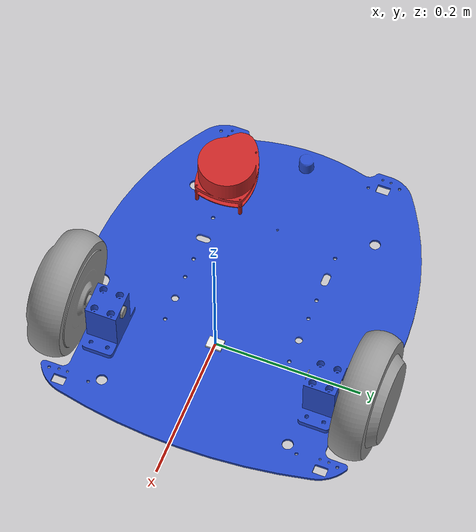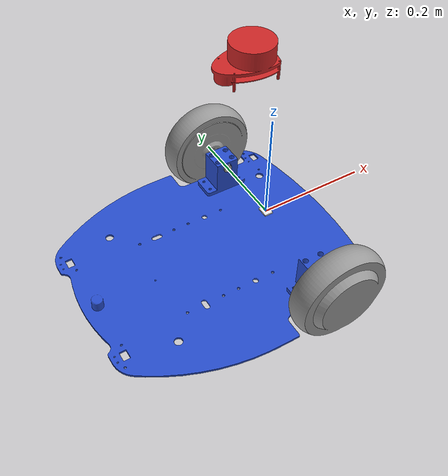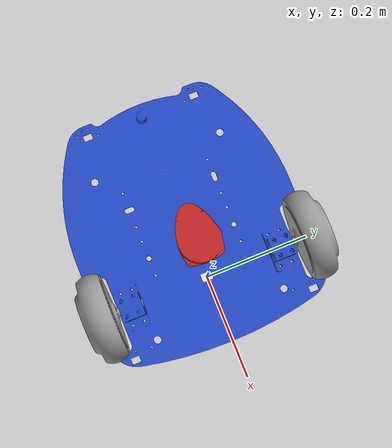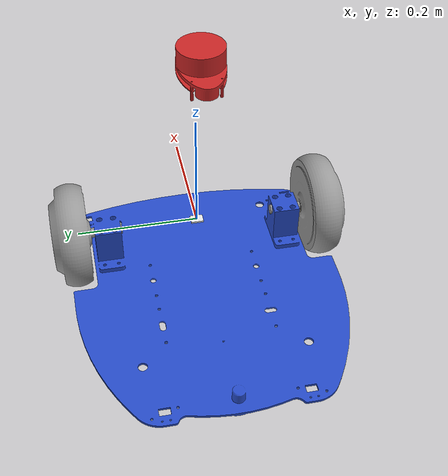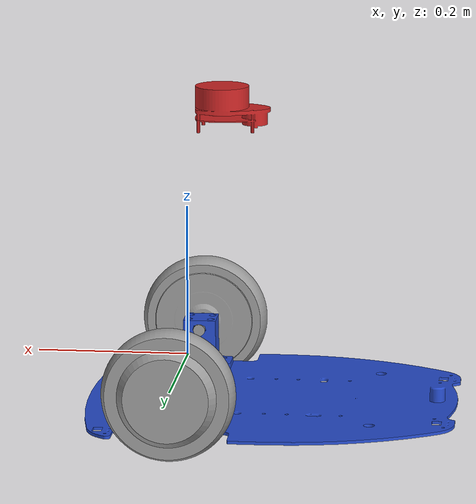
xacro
<?xml version="1.0"?>
<robot xmlns:xacro="http://www.ros.org/wiki/xacro" name="andbot1dot2">
	<xacro:property name="robotname" value="andbot1dot2"/>
	<!-- Import all Gazebo-customization elements, including Gazebo colors-->
        <xacro:include filename="$(find andbot1dot2)/modeldescription/urdf/andbot1dot2.gazebo" />
        <!-- Import Rviz colors -->
        <xacro:include filename="$(find andbot1dot2)/modeldescription/urdf/andbot1dot2material4rviz.xacro"/>
        <xacro:include filename="$(find andbot1dot2)/modeldescription/urdf/sensors/rplidar_laser.urdf.xacro" />
        <xacro:include filename="$(find andbot1dot2)/modeldescription/urdf/sensors/mpu6050_imu.urdf.xacro" />
		<link name="${robotname}_base">
                <collision>
                        <geometry>
                                <mesh filename="package://andbot1dot2/modeldescription/mesh/andbot1dot2_baseplate.STL"></mesh></geometry></collision>
                <visual>
                        <geometry>
                                <mesh filename="package://andbot1dot2/modeldescription/mesh/andbot1dot2_baseplate.STL"/>
                        </geometry>
                        <material name="blue"></material>
                        <origin rpy="0 0 0" xyz="0 0 0"/>
                </visual>
                <inertial>
                        <mass value="5.702"/>
                        <inertia ixx="0.1866" ixy="0.0" ixz="0.0038" iyy="0.1322" iyz="0.0" izz="0.2826"/>
                </inertial>
        </link>
		<link name="${robotname}_leftwheel">
                <collision>
                        <geometry>
                                <mesh filename="package://andbot1dot2/modeldescription/mesh/andbot1dot2_leftwheel.STL"></mesh></geometry></collision>
                <visual>
                        <geometry>
                                <mesh filename="package://andbot1dot2/modeldescription/mesh/andbot1dot2_leftwheel.STL"/>
                        </geometry>
                        <material name="grey">
                        </material>
                </visual>
                <inertial>
                        <mass value="1.158"/><!-- Is this actually right? -->
                        <inertia ixx="0.0532" ixy="0.0" ixz="0.0" iyy="0.0038" iyz="0.0" izz="0.0532"/>
                </inertial>
        </link>
		<link name="${robotname}_rightwheel">
                <collision>
                        <geometry>
                                <mesh filename="package://andbot1dot2/modeldescription/mesh/andbot1dot2_rightwheel.STL"></mesh></geometry></collision>
                <visual>
                        <geometry>
                                <mesh filename="package://andbot1dot2/modeldescription/mesh/andbot1dot2_rightwheel.STL"/>
                        </geometry>
                        <material name="grey">
                        </material>
                </visual>
                <inertial>
                        <mass value="1.158"/>
                        <inertia ixx="0.0532" ixy="0.0" ixz="0.0" iyy="0.0038" iyz="0.0" izz="0.0532"/>
                </inertial>
        </link>
        <joint name="base2leftwheel" type="continuous">
                <parent link="${robotname}_base"/>
                <child link="${robotname}_leftwheel"/>
                <origin xyz="0 0.20684 0"/>
                <axis xyz="0 -1 0"/>
        </joint>
        <joint name="base2rightwheel" type="continuous">
                <parent link="${robotname}_base"/>
                <child link="${robotname}_rightwheel"/>
                <origin xyz="0 -0.20684 0"/>
                <axis xyz="0 1 0"/>
        </joint>
    <xacro:rplidar_laser name="${robotname}" parent="${robotname}_base" ros_topic="scan" update_rate="40" min_angle="-1.3962634" max_angle="1.3962634" >
    </xacro:rplidar_laser>
    <xacro:mpu6050_imu name="${robotname}" parent="${robotname}_base">
    </xacro:mpu6050_imu>
</robot>

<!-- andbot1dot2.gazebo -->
<robot xmlns:xacro="http://www.ros.org/wiki/xacro">
	<xacro:property name="robotname" value="andbot1dot2"/>
	<!-- ros_control plugin -->
	<gazebo>
	  <plugin name="gazebo_ros_control" filename="libgazebo_ros_control.so">
	    <robotNamespace>/andbot1dot2</robotNamespace>
	    <robotSimType>gazebo_ros_control/DefaultRobotHWSim</robotSimType>
	  </plugin>
	  <plugin name="differential_drive_controller" filename="libgazebo_ros_diff_drive.so">
	  	<publishWheelTF>false</publishWheelTF>
	  	<robotNamespace>/</robotNamespace>
	  	<publishTf>1</publishTf>
	  	<publishWheelJointState>false</publishWheelJointState>
	  	<alwaysOn>true</alwaysOn>
	  	<updateRate>100.0</updateRate>
	  	<leftJoint>shaft2leftwheel</leftJoint>
	  	<rightJoint>shaft2rightwheel</rightJoint>
	  	<wheelSeparation>0.247</wheelSeparation>
	  	<wheelDiameter>0.075</wheelDiameter>
	  	<broadcastTF>1</broadcastTF>
	  	<wheelTorque>30</wheelTorque>
	  	<wheelAcceleration>1.8</wheelAcceleration>
	  	<commandTopic>andbot1dot2/cmd_vel</commandTopic>
	  	<odometryTopic>odom</odometryTopic>
    	<odometryFrame>odom</odometryFrame>
    	<robotBaseFrame>${robotname}_base</robotBaseFrame></plugin>
	</gazebo>

	<!--baselink-->
	<gazebo reference="${robotname}_base">
		<material>Gazebo/Blue</material></gazebo>
	<gazebo reference="${robotname}_shaft"><material>Gazebo/White</material></gazebo>
	<gazebo reference="${robotname}_leftwheel"><material>Gazebo/Grey</material></gazebo>
	<gazebo reference="${robotname}_rightwheel"><material>Gazebo/Grey</material></gazebo>
	<gazebo reference="${robotname}_rplidar"><material>Gazebo/Red</material>
		<sensor type="ray" name="rplidar">
			<pose>0 0 0 0 0 0</pose>
			<visualize>false</visualize>
			<update_rate>40</update_rate>
			<ray>
				<scan>
					<horizontal>
						<samples>180</samples>
						<resolution>1</resolution>
						<min_angle>-1.570796</min_angle>
						<max_angle>1.570796</max_angle></horizontal></scan>
					<range>
						<min>0.15</min>
          				<max>6.0</max>
          				<resolution>0.01</resolution></range>
					<noise></noise></ray>
		<plugin name="gazebo_ros_head_hokuyo_controller" filename="libgazebo_ros_laser.so">
        <topicName>${robotname}_rplidar_scan</topicName>
        <frameName>${robotname}_rplidar</frameName>
      </plugin></sensor></gazebo></robot>

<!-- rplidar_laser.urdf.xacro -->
<robot xmlns:xacro="http://www.ros.org/wiki/xacro">
  	<xacro:macro name="rplidar_laser" params="name parent ros_topic update_rate min_angle max_angle">
	  	<joint name="base2rplidar" type="fixed">
			<parent link="${parent}"></parent>
			<child link="${name}_rplidar"></child>
			<!--  rotate z axis 180 degree according to the placement on andbot -->
			<origin xyz="-0.02426 0.0 0.17395" rpy="0 0 0"></origin>
		</joint>
	  	<link name="${name}_rplidar">
			<collision>
				<geometry>
					<mesh filename="package://andbot1dot2/modeldescription/mesh/andbot1dot2_rplidar.STL"></mesh></geometry></collision>
			<visual>
				<geometry>
					<mesh filename="package://andbot1dot2/modeldescription/mesh/andbot1dot2_rplidar.STL"></mesh></geometry>
				<material name="red"></material></visual>
			<inertial>
				<mass value="0.1646"></mass>
				<inertia ixx="0.0046" ixy="0.0" ixz="-0.0007" iyy="0.0048" iyz="0.0" izz="0.0003"></inertia></inertial>
		</link>
    </xacro:macro>
</robot>

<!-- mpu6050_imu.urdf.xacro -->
<robot xmlns:xacro="http://www.ros.org/wiki/xacro">
  	<xacro:macro name="mpu6050_imu" params="name parent">
	  	<joint name="base2mpu6050" type="fixed">
			<parent link="${parent}"></parent>
			<child link="${name}_mpu6050_link"></child>
			<origin xyz="0.0 0.0 0.0" rpy="0 0 0"></origin>
		</joint>
	  	<link name="${name}_mpu6050_link">
			<collision>
				<geometry>
	          		<box size="0.016 0.021 0.003"/>
		 		</geometry>
		 	</collision>
			<visual>
				<geometry>
	       			<box size="0.016 0.021 0.003"/>
	  			</geometry>
				<material name="white"></material></visual>
			<inertial>
				<mass value="0.004"></mass>
				<inertia ixx="0.0000001" ixy="0" ixz="0" iyy="0.0000001" iyz="0" izz="0.0000001"/>
				</inertial>
		</link>
    </xacro:macro>
</robot>
